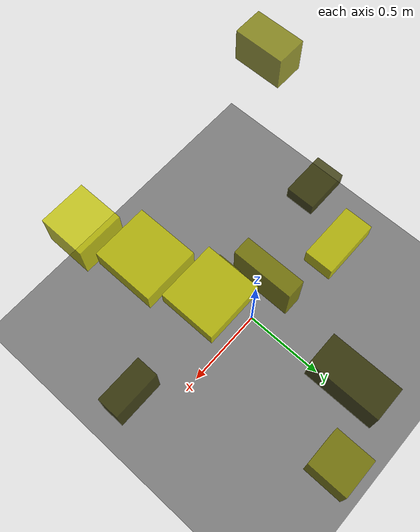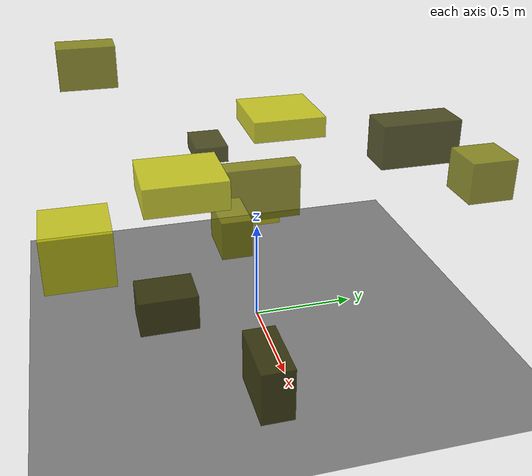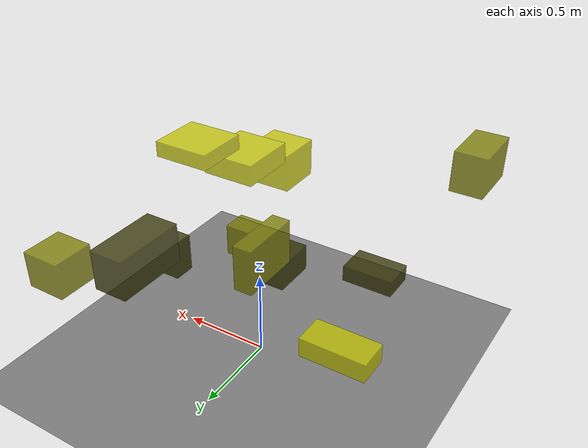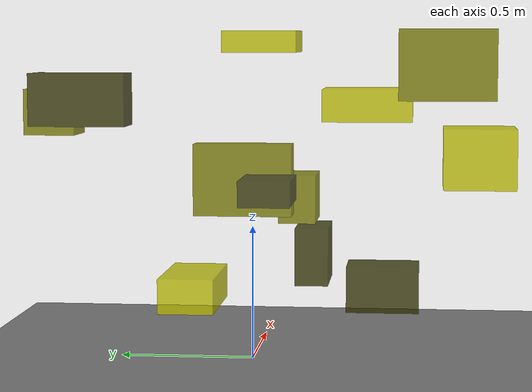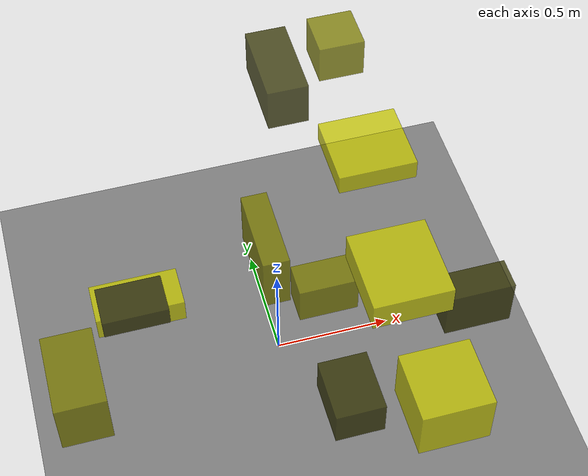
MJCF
<?xml version="1.0"?>
<mujoco model="obstacle_scene">
  <compiler angle="radian" coordinate="local"/>
  <option timestep="0.001" gravity="0 0 -9.81"/>

  <asset>
    <material name="obstacle_mat" rgba="0.8 0.8 0.0 0.8"/>
    <material name="ground_mat" rgba="0.5 0.5 0.5 1"/>
  </asset>

  <worldbody>
    <!-- Ground plane -->
    <geom name="ground" type="plane" size="3 3 0.1" material="ground_mat"/>

    <!-- Obstacles -->
    <body name="obstacle_0" pos="0.835088 -0.170433 0.284644">
      <geom name="obs_0" type="box" size="0.149724 0.069983 0.120724" rgba="0.2 0.2 0.0 0.8"/>
    </body>
    <body name="obstacle_1" pos="-0.876921 -0.703432 1.120834">
      <geom name="obs_1" type="box" size="0.088652 0.150193 0.110429" rgba="0.5 0.5 0.0 0.8"/>
    </body>
    <body name="obstacle_2" pos="0.415196 -0.853828 0.731361">
      <geom name="obs_2" type="box" size="0.139456 0.141309 0.118609" rgba="0.8 0.8 0.0 0.8"/>
    </body>
    <body name="obstacle_3" pos="-0.615065 -0.115195 0.695390">
      <geom name="obs_3" type="box" size="0.131669 0.085712 0.043242" rgba="0.2 0.2 0.0 0.8"/>
    </body>
    <body name="obstacle_4" pos="0.505807 0.875377 0.902491">
      <geom name="obs_4" type="box" size="0.100659 0.103579 0.092994" rgba="0.5 0.5 0.0 0.8"/>
    </body>
    <body name="obstacle_5" pos="0.372546 -0.416305 0.942032">
      <geom name="obs_5" type="box" size="0.157332 0.173935 0.062780" rgba="0.8 0.8 0.0 0.8"/>
    </body>
    <body name="obstacle_6" pos="0.183357 -0.483257 0.250610">
      <geom name="obs_6" type="box" size="0.105581 0.137250 0.086659" rgba="0.2 0.2 0.0 0.8"/>
    </body>
    <body name="obstacle_7" pos="-0.037650 0.030856 0.679377">
      <geom name="obs_7" type="box" size="0.054269 0.182186 0.132848" rgba="0.5 0.5 0.0 0.8"/>
    </body>
    <body name="obstacle_8" pos="0.366377 0.002038 1.188277">
      <geom name="obs_8" type="box" size="0.152390 0.144462 0.041795" rgba="0.8 0.8 0.0 0.8"/>
    </body>
    <body name="obstacle_9" pos="0.192532 0.696110 0.964410">
      <geom name="obs_9" type="box" size="0.087633 0.187321 0.102323" rgba="0.2 0.2 0.0 0.8"/>
    </body>
    <body name="obstacle_10" pos="0.157820 -0.161552 0.597022">
      <geom name="obs_10" type="box" size="0.122519 0.069762 0.089975" rgba="0.5 0.5 0.0 0.8"/>
    </body>
    <body name="obstacle_11" pos="-0.577746 0.140538 0.357966">
      <geom name="obs_11" type="box" size="0.188194 0.092157 0.057698" rgba="0.8 0.8 0.0 0.8"/>
    </body>
  </worldbody>
</mujoco>
